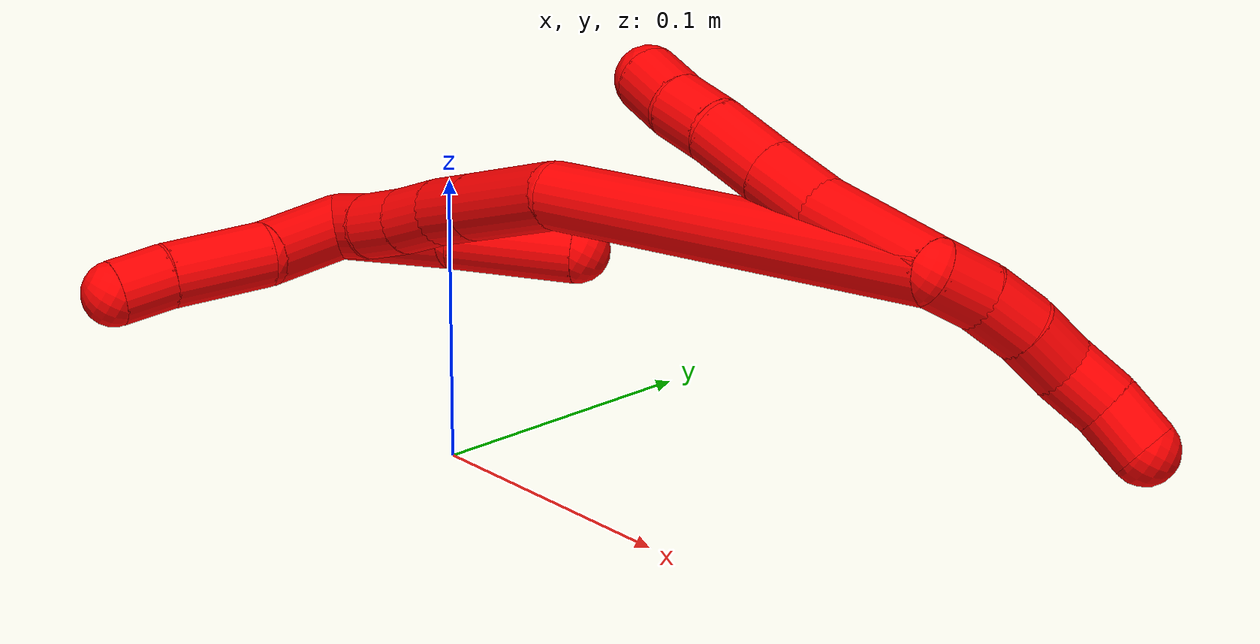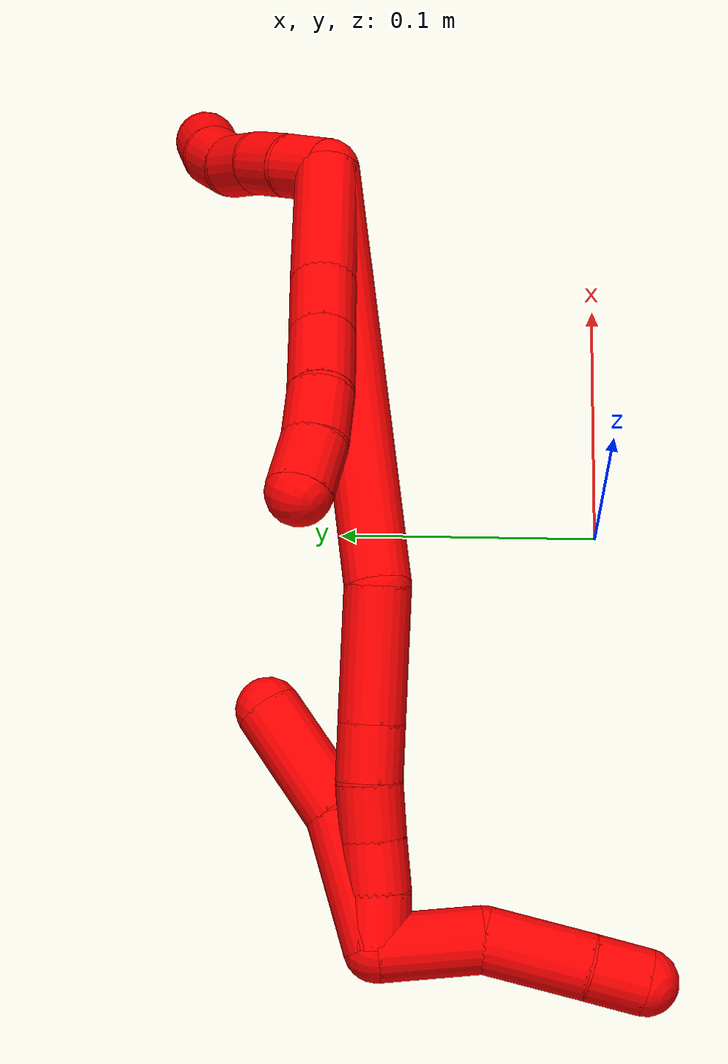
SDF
<sdf version="1.7">
 <world name="default">
  <model name="2">
   <static>0</static>
   <link name="2">
    <collision name="collision-cylinder-e_1_2_8">
     <pose>-0.016824 -0.011611 0.016488 0.613524 -0.695293 -0.228565</pose>
     <geometry><cylinder><radius>0.0125</radius><length>0.052525</length></cylinder></geometry>
     <surface>
      <friction><ode><mu>1.16</mu><mu2>1.16</mu2><slip1>0</slip1><slip2>0</slip2></ode></friction>
      <contact><ode><kp>1e+06</kp><kd>1</kd><max_vel>0</max_vel><min_depth>0.001</min_depth></ode></contact>
     </surface>
    </collision>
    <visual name="visual-cylinder-e_1_2_8">
     <pose>-0.016824 -0.011611 0.016488 0.613524 -0.695293 -0.228565</pose>
     <geometry><cylinder><radius>0.0125</radius><length>0.052525</length></cylinder></geometry>
     <material><ambient>1 0 0 1</ambient></material>
    </visual>
    <collision name="collision-cylinder-e_2_8_9">
     <pose>-0.042197 -0.027312 0.042206 0.41721 -0.702673 -0.154873</pose>
     <geometry><cylinder><radius>0.0125</radius><length>0.026457</length></cylinder></geometry>
     <surface>
      <friction><ode><mu>1.16</mu><mu2>1.16</mu2><slip1>0</slip1><slip2>0</slip2></ode></friction>
      <contact><ode><kp>1e+06</kp><kd>1</kd><max_vel>0</max_vel><min_depth>0.001</min_depth></ode></contact>
     </surface>
    </collision>
    <visual name="visual-cylinder-e_2_8_9">
     <pose>-0.042197 -0.027312 0.042206 0.41721 -0.702673 -0.154873</pose>
     <geometry><cylinder><radius>0.0125</radius><length>0.026457</length></cylinder></geometry>
     <material><ambient>1 0 0 1</ambient></material>
    </visual>
    <collision name="collision-cylinder-e_3_9_10">
     <pose>-0.059893 -0.035481 0.061266 0.393206 -0.709922 -0.147386</pose>
     <geometry><cylinder><radius>0.0125</radius><length>0.028067</length></cylinder></geometry>
     <surface>
      <friction><ode><mu>1.16</mu><mu2>1.16</mu2><slip1>0</slip1><slip2>0</slip2></ode></friction>
      <contact><ode><kp>1e+06</kp><kd>1</kd><max_vel>0</max_vel><min_depth>0.001</min_depth></ode></contact>
     </surface>
    </collision>
    <visual name="visual-cylinder-e_3_9_10">
     <pose>-0.059893 -0.035481 0.061266 0.393206 -0.709922 -0.147386</pose>
     <geometry><cylinder><radius>0.0125</radius><length>0.028067</length></cylinder></geometry>
     <material><ambient>1 0 0 1</ambient></material>
    </visual>
    <collision name="collision-cylinder-e_4_10_11">
     <pose>-0.076432 -0.043883 0.077353 0.604814 -0.771228 -0.251944</pose>
     <geometry><cylinder><radius>0.0125</radius><length>0.021211</length></cylinder></geometry>
     <surface>
      <friction><ode><mu>1.16</mu><mu2>1.16</mu2><slip1>0</slip1><slip2>0</slip2></ode></friction>
      <contact><ode><kp>1e+06</kp><kd>1</kd><max_vel>0</max_vel><min_depth>0.001</min_depth></ode></contact>
     </surface>
    </collision>
    <visual name="visual-cylinder-e_4_10_11">
     <pose>-0.076432 -0.043883 0.077353 0.604814 -0.771228 -0.251944</pose>
     <geometry><cylinder><radius>0.0125</radius><length>0.021211</length></cylinder></geometry>
     <material><ambient>1 0 0 1</ambient></material>
    </visual>
    <collision name="collision-cylinder-e_5_11_6">
     <pose>-0.092471 -0.052153 0.088883 0.642361 -0.91973 -0.326625</pose>
     <geometry><cylinder><radius>0.0125</radius><length>0.021739</length></cylinder></geometry>
     <surface>
      <friction><ode><mu>1.16</mu><mu2>1.16</mu2><slip1>0</slip1><slip2>0</slip2></ode></friction>
      <contact><ode><kp>1e+06</kp><kd>1</kd><max_vel>0</max_vel><min_depth>0.001</min_depth></ode></contact>
     </surface>
    </collision>
    <visual name="visual-cylinder-e_5_11_6">
     <pose>-0.092471 -0.052153 0.088883 0.642361 -0.91973 -0.326625</pose>
     <geometry><cylinder><radius>0.0125</radius><length>0.021739</length></cylinder></geometry>
     <material><ambient>1 0 0 1</ambient></material>
    </visual>
    <collision name="collision-cylinder-e_1_2_12">
     <pose>-0.001869 -0.000963 -0.009776 3.04336 -0.187986 -2.18029</pose>
     <geometry><cylinder><radius>0.0125</radius><length>0.02</length></cylinder></geometry>
     <surface>
      <friction><ode><mu>1.16</mu><mu2>1.16</mu2><slip1>0</slip1><slip2>0</slip2></ode></friction>
      <contact><ode><kp>1e+06</kp><kd>1</kd><max_vel>0</max_vel><min_depth>0.001</min_depth></ode></contact>
     </surface>
    </collision>
    <visual name="visual-cylinder-e_1_2_12">
     <pose>-0.001869 -0.000963 -0.009776 3.04336 -0.187986 -2.18029</pose>
     <geometry><cylinder><radius>0.0125</radius><length>0.02</length></cylinder></geometry>
     <material><ambient>1 0 0 1</ambient></material>
    </visual>
    <collision name="collision-cylinder-e_2_12_13">
     <pose>-0.004227 -0.003866 -0.029351 2.94618 -0.048956 -0.489536</pose>
     <geometry><cylinder><radius>0.0125</radius><length>0.02</length></cylinder></geometry>
     <surface>
      <friction><ode><mu>1.16</mu><mu2>1.16</mu2><slip1>0</slip1><slip2>0</slip2></ode></friction>
      <contact><ode><kp>1e+06</kp><kd>1</kd><max_vel>0</max_vel><min_depth>0.001</min_depth></ode></contact>
     </surface>
    </collision>
    <visual name="visual-cylinder-e_2_12_13">
     <pose>-0.004227 -0.003866 -0.029351 2.94618 -0.048956 -0.489536</pose>
     <geometry><cylinder><radius>0.0125</radius><length>0.02</length></cylinder></geometry>
     <material><ambient>1 0 0 1</ambient></material>
    </visual>
    <collision name="collision-cylinder-e_3_13_14">
     <pose>-0.004924 -0.009109 -0.048585 2.80492 -0.020751 -0.121959</pose>
     <geometry><cylinder><radius>0.0125</radius><length>0.02</length></cylinder></geometry>
     <surface>
      <friction><ode><mu>1.16</mu><mu2>1.16</mu2><slip1>0</slip1><slip2>0</slip2></ode></friction>
      <contact><ode><kp>1e+06</kp><kd>1</kd><max_vel>0</max_vel><min_depth>0.001</min_depth></ode></contact>
     </surface>
    </collision>
    <visual name="visual-cylinder-e_3_13_14">
     <pose>-0.004924 -0.009109 -0.048585 2.80492 -0.020751 -0.121959</pose>
     <geometry><cylinder><radius>0.0125</radius><length>0.02</length></cylinder></geometry>
     <material><ambient>1 0 0 1</ambient></material>
    </visual>
    <collision name="collision-cylinder-e_4_14_15">
     <pose>-0.003092 -0.013571 -0.067743 3.02289 0.205402 2.09557</pose>
     <geometry><cylinder><radius>0.0125</radius><length>0.02</length></cylinder></geometry>
     <surface>
      <friction><ode><mu>1.16</mu><mu2>1.16</mu2><slip1>0</slip1><slip2>0</slip2></ode></friction>
      <contact><ode><kp>1e+06</kp><kd>1</kd><max_vel>0</max_vel><min_depth>0.001</min_depth></ode></contact>
     </surface>
    </collision>
    <visual name="visual-cylinder-e_4_14_15">
     <pose>-0.003092 -0.013571 -0.067743 3.02289 0.205402 2.09557</pose>
     <geometry><cylinder><radius>0.0125</radius><length>0.02</length></cylinder></geometry>
     <material><ambient>1 0 0 1</ambient></material>
    </visual>
    <collision name="collision-cylinder-e_5_15_5">
     <pose>0.003521 -0.015949 -0.086273 3.00409 0.474925 2.58721</pose>
     <geometry><cylinder><radius>0.0125</radius><length>0.02</length></cylinder></geometry>
     <surface>
      <friction><ode><mu>1.16</mu><mu2>1.16</mu2><slip1>0</slip1><slip2>0</slip2></ode></friction>
      <contact><ode><kp>1e+06</kp><kd>1</kd><max_vel>0</max_vel><min_depth>0.001</min_depth></ode></contact>
     </surface>
    </collision>
    <visual name="visual-cylinder-e_5_15_5">
     <pose>0.003521 -0.015949 -0.086273 3.00409 0.474925 2.58721</pose>
     <geometry><cylinder><radius>0.0125</radius><length>0.02</length></cylinder></geometry>
     <material><ambient>1 0 0 1</ambient></material>
    </visual>
    <collision name="collision-cylinder-e_1_2_16">
     <pose>-0.040256 -0.052582 0.051061 0.800075 -0.502252 -0.216106</pose>
     <geometry><cylinder><radius>0.0125</radius><length>0.167244</length></cylinder></geometry>
     <surface>
      <friction><ode><mu>1.16</mu><mu2>1.16</mu2><slip1>0</slip1><slip2>0</slip2></ode></friction>
      <contact><ode><kp>1e+06</kp><kd>1</kd><max_vel>0</max_vel><min_depth>0.001</min_depth></ode></contact>
     </surface>
    </collision>
    <visual name="visual-cylinder-e_1_2_16">
     <pose>-0.040256 -0.052582 0.051061 0.800075 -0.502252 -0.216106</pose>
     <geometry><cylinder><radius>0.0125</radius><length>0.167244</length></cylinder></geometry>
     <material><ambient>1 0 0 1</ambient></material>
    </visual>
    <collision name="collision-cylinder-e_2_16_17">
     <pose>-0.092924 -0.125341 0.110535 1.17576 -0.516423 -0.348479</pose>
     <geometry><cylinder><radius>0.0125</radius><length>0.050275</length></cylinder></geometry>
     <surface>
      <friction><ode><mu>1.16</mu><mu2>1.16</mu2><slip1>0</slip1><slip2>0</slip2></ode></friction>
      <contact><ode><kp>1e+06</kp><kd>1</kd><max_vel>0</max_vel><min_depth>0.001</min_depth></ode></contact>
     </surface>
    </collision>
    <visual name="visual-cylinder-e_2_16_17">
     <pose>-0.092924 -0.125341 0.110535 1.17576 -0.516423 -0.348479</pose>
     <geometry><cylinder><radius>0.0125</radius><length>0.050275</length></cylinder></geometry>
     <material><ambient>1 0 0 1</ambient></material>
    </visual>
    <collision name="collision-cylinder-e_3_17_18">
     <pose>-0.110626 -0.154119 0.122564 1.17278 -0.515711 -0.346888</pose>
     <geometry><cylinder><radius>0.0125</radius><length>0.021453</length></cylinder></geometry>
     <surface>
      <friction><ode><mu>1.16</mu><mu2>1.16</mu2><slip1>0</slip1><slip2>0</slip2></ode></friction>
      <contact><ode><kp>1e+06</kp><kd>1</kd><max_vel>0</max_vel><min_depth>0.001</min_depth></ode></contact>
     </surface>
    </collision>
    <visual name="visual-cylinder-e_3_17_18">
     <pose>-0.110626 -0.154119 0.122564 1.17278 -0.515711 -0.346888</pose>
     <geometry><cylinder><radius>0.0125</radius><length>0.021453</length></cylinder></geometry>
     <material><ambient>1 0 0 1</ambient></material>
    </visual>
    <collision name="collision-cylinder-e_4_18_19">
     <pose>-0.119934 -0.171642 0.130001 1.16619 -0.392575 -0.26083</pose>
     <geometry><cylinder><radius>0.0125</radius><length>0.021007</length></cylinder></geometry>
     <surface>
      <friction><ode><mu>1.16</mu><mu2>1.16</mu2><slip1>0</slip1><slip2>0</slip2></ode></friction>
      <contact><ode><kp>1e+06</kp><kd>1</kd><max_vel>0</max_vel><min_depth>0.001</min_depth></ode></contact>
     </surface>
    </collision>
    <visual name="visual-cylinder-e_4_18_19">
     <pose>-0.119934 -0.171642 0.130001 1.16619 -0.392575 -0.26083</pose>
     <geometry><cylinder><radius>0.0125</radius><length>0.021007</length></cylinder></geometry>
     <material><ambient>1 0 0 1</ambient></material>
    </visual>
    <collision name="collision-cylinder-e_5_19_20">
     <pose>-0.127938 -0.188668 0.138117 1.08342 -0.409852 -0.248851</pose>
     <geometry><cylinder><radius>0.0125</radius><length>0.020002</length></cylinder></geometry>
     <surface>
      <friction><ode><mu>1.16</mu><mu2>1.16</mu2><slip1>0</slip1><slip2>0</slip2></ode></friction>
      <contact><ode><kp>1e+06</kp><kd>1</kd><max_vel>0</max_vel><min_depth>0.001</min_depth></ode></contact>
     </surface>
    </collision>
    <visual name="visual-cylinder-e_5_19_20">
     <pose>-0.127938 -0.188668 0.138117 1.08342 -0.409852 -0.248851</pose>
     <geometry><cylinder><radius>0.0125</radius><length>0.020002</length></cylinder></geometry>
     <material><ambient>1 0 0 1</ambient></material>
    </visual>
    <collision name="collision-cylinder-e_6_20_1">
     <pose>-0.137035 -0.204337 0.146514 1.07406 -0.536029 -0.324151</pose>
     <geometry><cylinder><radius>0.0125</radius><length>0.020018</length></cylinder></geometry>
     <surface>
      <friction><ode><mu>1.16</mu><mu2>1.16</mu2><slip1>0</slip1><slip2>0</slip2></ode></friction>
      <contact><ode><kp>1e+06</kp><kd>1</kd><max_vel>0</max_vel><min_depth>0.001</min_depth></ode></contact>
     </surface>
    </collision>
    <visual name="visual-cylinder-e_6_20_1">
     <pose>-0.137035 -0.204337 0.146514 1.07406 -0.536029 -0.324151</pose>
     <geometry><cylinder><radius>0.0125</radius><length>0.020018</length></cylinder></geometry>
     <material><ambient>1 0 0 1</ambient></material>
    </visual>
    <collision name="collision-cylinder-e_1_1_21">
     <pose>-0.133679 -0.194723 0.133266 -2.36108 0.333831 -0.777476</pose>
     <geometry><cylinder><radius>0.0125</radius><length>0.051684</length></cylinder></geometry>
     <surface>
      <friction><ode><mu>1.16</mu><mu2>1.16</mu2><slip1>0</slip1><slip2>0</slip2></ode></friction>
      <contact><ode><kp>1e+06</kp><kd>1</kd><max_vel>0</max_vel><min_depth>0.001</min_depth></ode></contact>
     </surface>
    </collision>
    <visual name="visual-cylinder-e_1_1_21">
     <pose>-0.133679 -0.194723 0.133266 -2.36108 0.333831 -0.777476</pose>
     <geometry><cylinder><radius>0.0125</radius><length>0.051684</length></cylinder></geometry>
     <material><ambient>1 0 0 1</ambient></material>
    </visual>
    <collision name="collision-cylinder-e_2_21_4">
     <pose>-0.123001 -0.165067 0.095349 -2.59636 0.091635 -0.325097</pose>
     <geometry><cylinder><radius>0.0125</radius><length>0.048316</length></cylinder></geometry>
     <surface>
      <friction><ode><mu>1.16</mu><mu2>1.16</mu2><slip1>0</slip1><slip2>0</slip2></ode></friction>
      <contact><ode><kp>1e+06</kp><kd>1</kd><max_vel>0</max_vel><min_depth>0.001</min_depth></ode></contact>
     </surface>
    </collision>
    <visual name="visual-cylinder-e_2_21_4">
     <pose>-0.123001 -0.165067 0.095349 -2.59636 0.091635 -0.325097</pose>
     <geometry><cylinder><radius>0.0125</radius><length>0.048316</length></cylinder></geometry>
     <material><ambient>1 0 0 1</ambient></material>
    </visual>
    <collision name="collision-cylinder-e_1_1_22">
     <pose>-0.12646 -0.213807 0.162098 0.164392 0.932384 0.082859</pose>
     <geometry><cylinder><radius>0.0125</radius><length>0.039068</length></cylinder></geometry>
     <surface>
      <friction><ode><mu>1.16</mu><mu2>1.16</mu2><slip1>0</slip1><slip2>0</slip2></ode></friction>
      <contact><ode><kp>1e+06</kp><kd>1</kd><max_vel>0</max_vel><min_depth>0.001</min_depth></ode></contact>
     </surface>
    </collision>
    <visual name="visual-cylinder-e_1_1_22">
     <pose>-0.12646 -0.213807 0.162098 0.164392 0.932384 0.082859</pose>
     <geometry><cylinder><radius>0.0125</radius><length>0.039068</length></cylinder></geometry>
     <material><ambient>1 0 0 1</ambient></material>
    </visual>
    <collision name="collision-cylinder-e_2_22_23">
     <pose>-0.099049 -0.221734 0.188467 0.384406 0.630706 0.126806</pose>
     <geometry><cylinder><radius>0.0125</radius><length>0.039762</length></cylinder></geometry>
     <surface>
      <friction><ode><mu>1.16</mu><mu2>1.16</mu2><slip1>0</slip1><slip2>0</slip2></ode></friction>
      <contact><ode><kp>1e+06</kp><kd>1</kd><max_vel>0</max_vel><min_depth>0.001</min_depth></ode></contact>
     </surface>
    </collision>
    <visual name="visual-cylinder-e_2_22_23">
     <pose>-0.099049 -0.221734 0.188467 0.384406 0.630706 0.126806</pose>
     <geometry><cylinder><radius>0.0125</radius><length>0.039762</length></cylinder></geometry>
     <material><ambient>1 0 0 1</ambient></material>
    </visual>
    <collision name="collision-cylinder-e_3_23_3">
     <pose>-0.08073 -0.231692 0.210635 0.495594 0.672547 0.176411</pose>
     <geometry><cylinder><radius>0.0125</radius><length>0.021169</length></cylinder></geometry>
     <surface>
      <friction><ode><mu>1.16</mu><mu2>1.16</mu2><slip1>0</slip1><slip2>0</slip2></ode></friction>
      <contact><ode><kp>1e+06</kp><kd>1</kd><max_vel>0</max_vel><min_depth>0.001</min_depth></ode></contact>
     </surface>
    </collision>
    <visual name="visual-cylinder-e_3_23_3">
     <pose>-0.08073 -0.231692 0.210635 0.495594 0.672547 0.176411</pose>
     <geometry><cylinder><radius>0.0125</radius><length>0.021169</length></cylinder></geometry>
     <material><ambient>1 0 0 1</ambient></material>
    </visual>
    <collision name="collision-sphere-3">
     <pose>-0.074136 -0.23563 0.217918 0 -0 0</pose>
     <geometry><sphere><radius>0.0125</radius></sphere></geometry>
     <surface>
      <friction><ode><mu>1.16</mu><mu2>1.16</mu2><slip1>0</slip1><slip2>0</slip2></ode></friction>
      <contact><ode><kp>1e+06</kp><kd>1</kd><max_vel>0</max_vel><min_depth>0.001</min_depth></ode></contact>
     </surface>
    </collision>
    <visual name="visual-sphere-3">
     <pose>-0.074136 -0.23563 0.217918 0 -0 0</pose>
     <geometry><sphere><radius>0.0125</radius></sphere></geometry>
     <material><ambient>1 0 0 1</ambient></material>
    </visual>
    <collision name="collision-sphere-23">
     <pose>-0.087324 -0.227755 0.203351 0 -0 0</pose>
     <geometry><sphere><radius>0.0125</radius></sphere></geometry>
     <surface>
      <friction><ode><mu>1.16</mu><mu2>1.16</mu2><slip1>0</slip1><slip2>0</slip2></ode></friction>
      <contact><ode><kp>1e+06</kp><kd>1</kd><max_vel>0</max_vel><min_depth>0.001</min_depth></ode></contact>
     </surface>
    </collision>
    <visual name="visual-sphere-23">
     <pose>-0.087324 -0.227755 0.203351 0 -0 0</pose>
     <geometry><sphere><radius>0.0125</radius></sphere></geometry>
     <material><ambient>1 0 0 1</ambient></material>
    </visual>
    <collision name="collision-sphere-22">
     <pose>-0.110773 -0.215712 0.173582 0 -0 0</pose>
     <geometry><sphere><radius>0.0125</radius></sphere></geometry>
     <surface>
      <friction><ode><mu>1.16</mu><mu2>1.16</mu2><slip1>0</slip1><slip2>0</slip2></ode></friction>
      <contact><ode><kp>1e+06</kp><kd>1</kd><max_vel>0</max_vel><min_depth>0.001</min_depth></ode></contact>
     </surface>
    </collision>
    <visual name="visual-sphere-22">
     <pose>-0.110773 -0.215712 0.173582 0 -0 0</pose>
     <geometry><sphere><radius>0.0125</radius></sphere></geometry>
     <material><ambient>1 0 0 1</ambient></material>
    </visual>
    <collision name="collision-sphere-4">
     <pose>-0.12079 -0.15259 0.07478 0 -0 0</pose>
     <geometry><sphere><radius>0.0125</radius></sphere></geometry>
     <surface>
      <friction><ode><mu>1.16</mu><mu2>1.16</mu2><slip1>0</slip1><slip2>0</slip2></ode></friction>
      <contact><ode><kp>1e+06</kp><kd>1</kd><max_vel>0</max_vel><min_depth>0.001</min_depth></ode></contact>
     </surface>
    </collision>
    <visual name="visual-sphere-4">
     <pose>-0.12079 -0.15259 0.07478 0 -0 0</pose>
     <geometry><sphere><radius>0.0125</radius></sphere></geometry>
     <material><ambient>1 0 0 1</ambient></material>
    </visual>
    <collision name="collision-sphere-21">
     <pose>-0.125211 -0.177543 0.115917 0 -0 0</pose>
     <geometry><sphere><radius>0.0125</radius></sphere></geometry>
     <surface>
      <friction><ode><mu>1.16</mu><mu2>1.16</mu2><slip1>0</slip1><slip2>0</slip2></ode></friction>
      <contact><ode><kp>1e+06</kp><kd>1</kd><max_vel>0</max_vel><min_depth>0.001</min_depth></ode></contact>
     </surface>
    </collision>
    <visual name="visual-sphere-21">
     <pose>-0.125211 -0.177543 0.115917 0 -0 0</pose>
     <geometry><sphere><radius>0.0125</radius></sphere></geometry>
     <material><ambient>1 0 0 1</ambient></material>
    </visual>
    <collision name="collision-sphere-1">
     <pose>-0.142146 -0.211902 0.150614 0 -0 0</pose>
     <geometry><sphere><radius>0.0125</radius></sphere></geometry>
     <surface>
      <friction><ode><mu>1.16</mu><mu2>1.16</mu2><slip1>0</slip1><slip2>0</slip2></ode></friction>
      <contact><ode><kp>1e+06</kp><kd>1</kd><max_vel>0</max_vel><min_depth>0.001</min_depth></ode></contact>
     </surface>
    </collision>
    <visual name="visual-sphere-1">
     <pose>-0.142146 -0.211902 0.150614 0 -0 0</pose>
     <geometry><sphere><radius>0.0125</radius></sphere></geometry>
     <material><ambient>1 0 0 1</ambient></material>
    </visual>
    <collision name="collision-sphere-6">
     <pose>-0.101117 -0.0561 0.094157 0 -0 0</pose>
     <geometry><sphere><radius>0.0125</radius></sphere></geometry>
     <surface>
      <friction><ode><mu>1.16</mu><mu2>1.16</mu2><slip1>0</slip1><slip2>0</slip2></ode></friction>
      <contact><ode><kp>1e+06</kp><kd>1</kd><max_vel>0</max_vel><min_depth>0.001</min_depth></ode></contact>
     </surface>
    </collision>
    <visual name="visual-sphere-6">
     <pose>-0.101117 -0.0561 0.094157 0 -0 0</pose>
     <geometry><sphere><radius>0.0125</radius></sphere></geometry>
     <material><ambient>1 0 0 1</ambient></material>
    </visual>
    <collision name="collision-sphere-11">
     <pose>-0.083824 -0.048207 0.083608 0 -0 0</pose>
     <geometry><sphere><radius>0.0125</radius></sphere></geometry>
     <surface>
      <friction><ode><mu>1.16</mu><mu2>1.16</mu2><slip1>0</slip1><slip2>0</slip2></ode></friction>
      <contact><ode><kp>1e+06</kp><kd>1</kd><max_vel>0</max_vel><min_depth>0.001</min_depth></ode></contact>
     </surface>
    </collision>
    <visual name="visual-sphere-11">
     <pose>-0.083824 -0.048207 0.083608 0 -0 0</pose>
     <geometry><sphere><radius>0.0125</radius></sphere></geometry>
     <material><ambient>1 0 0 1</ambient></material>
    </visual>
    <collision name="collision-sphere-10">
     <pose>-0.06904 -0.039559 0.071097 0 -0 0</pose>
     <geometry><sphere><radius>0.0125</radius></sphere></geometry>
     <surface>
      <friction><ode><mu>1.16</mu><mu2>1.16</mu2><slip1>0</slip1><slip2>0</slip2></ode></friction>
      <contact><ode><kp>1e+06</kp><kd>1</kd><max_vel>0</max_vel><min_depth>0.001</min_depth></ode></contact>
     </surface>
    </collision>
    <visual name="visual-sphere-10">
     <pose>-0.06904 -0.039559 0.071097 0 -0 0</pose>
     <geometry><sphere><radius>0.0125</radius></sphere></geometry>
     <material><ambient>1 0 0 1</ambient></material>
    </visual>
    <collision name="collision-sphere-9">
     <pose>-0.050746 -0.031403 0.051435 0 -0 0</pose>
     <geometry><sphere><radius>0.0125</radius></sphere></geometry>
     <surface>
      <friction><ode><mu>1.16</mu><mu2>1.16</mu2><slip1>0</slip1><slip2>0</slip2></ode></friction>
      <contact><ode><kp>1e+06</kp><kd>1</kd><max_vel>0</max_vel><min_depth>0.001</min_depth></ode></contact>
     </surface>
    </collision>
    <visual name="visual-sphere-9">
     <pose>-0.050746 -0.031403 0.051435 0 -0 0</pose>
     <geometry><sphere><radius>0.0125</radius></sphere></geometry>
     <material><ambient>1 0 0 1</ambient></material>
    </visual>
    <collision name="collision-sphere-2">
     <geometry><sphere><radius>0.0125</radius></sphere></geometry>
     <surface>
      <friction><ode><mu>1.16</mu><mu2>1.16</mu2><slip1>0</slip1><slip2>0</slip2></ode></friction>
      <contact><ode><kp>1e+06</kp><kd>1</kd><max_vel>0</max_vel><min_depth>0.001</min_depth></ode></contact>
     </surface>
    </collision>
    <visual name="visual-sphere-2">
     <geometry><sphere><radius>0.0125</radius></sphere></geometry>
     <material><ambient>1 0 0 1</ambient></material>
    </visual>
    <collision name="collision-sphere-19">
     <pose>-0.123953 -0.180563 0.133821 0 -0 0</pose>
     <geometry><sphere><radius>0.0125</radius></sphere></geometry>
     <surface>
      <friction><ode><mu>1.16</mu><mu2>1.16</mu2><slip1>0</slip1><slip2>0</slip2></ode></friction>
      <contact><ode><kp>1e+06</kp><kd>1</kd><max_vel>0</max_vel><min_depth>0.001</min_depth></ode></contact>
     </surface>
    </collision>
    <visual name="visual-sphere-19">
     <pose>-0.123953 -0.180563 0.133821 0 -0 0</pose>
     <geometry><sphere><radius>0.0125</radius></sphere></geometry>
     <material><ambient>1 0 0 1</ambient></material>
    </visual>
    <collision name="collision-sphere-8">
     <pose>-0.033648 -0.023222 0.032977 0 -0 0</pose>
     <geometry><sphere><radius>0.0125</radius></sphere></geometry>
     <surface>
      <friction><ode><mu>1.16</mu><mu2>1.16</mu2><slip1>0</slip1><slip2>0</slip2></ode></friction>
      <contact><ode><kp>1e+06</kp><kd>1</kd><max_vel>0</max_vel><min_depth>0.001</min_depth></ode></contact>
     </surface>
    </collision>
    <visual name="visual-sphere-8">
     <pose>-0.033648 -0.023222 0.032977 0 -0 0</pose>
     <geometry><sphere><radius>0.0125</radius></sphere></geometry>
     <material><ambient>1 0 0 1</ambient></material>
    </visual>
    <collision name="collision-sphere-12">
     <pose>-0.003738 -0.001927 -0.019553 0 -0 0</pose>
     <geometry><sphere><radius>0.0125</radius></sphere></geometry>
     <surface>
      <friction><ode><mu>1.16</mu><mu2>1.16</mu2><slip1>0</slip1><slip2>0</slip2></ode></friction>
      <contact><ode><kp>1e+06</kp><kd>1</kd><max_vel>0</max_vel><min_depth>0.001</min_depth></ode></contact>
     </surface>
    </collision>
    <visual name="visual-sphere-12">
     <pose>-0.003738 -0.001927 -0.019553 0 -0 0</pose>
     <geometry><sphere><radius>0.0125</radius></sphere></geometry>
     <material><ambient>1 0 0 1</ambient></material>
    </visual>
    <collision name="collision-sphere-13">
     <pose>-0.004716 -0.005806 -0.039149 0 -0 0</pose>
     <geometry><sphere><radius>0.0125</radius></sphere></geometry>
     <surface>
      <friction><ode><mu>1.16</mu><mu2>1.16</mu2><slip1>0</slip1><slip2>0</slip2></ode></friction>
      <contact><ode><kp>1e+06</kp><kd>1</kd><max_vel>0</max_vel><min_depth>0.001</min_depth></ode></contact>
     </surface>
    </collision>
    <visual name="visual-sphere-13">
     <pose>-0.004716 -0.005806 -0.039149 0 -0 0</pose>
     <geometry><sphere><radius>0.0125</radius></sphere></geometry>
     <material><ambient>1 0 0 1</ambient></material>
    </visual>
    <collision name="collision-sphere-14">
     <pose>-0.005131 -0.012411 -0.058022 0 -0 0</pose>
     <geometry><sphere><radius>0.0125</radius></sphere></geometry>
     <surface>
      <friction><ode><mu>1.16</mu><mu2>1.16</mu2><slip1>0</slip1><slip2>0</slip2></ode></friction>
      <contact><ode><kp>1e+06</kp><kd>1</kd><max_vel>0</max_vel><min_depth>0.001</min_depth></ode></contact>
     </surface>
    </collision>
    <visual name="visual-sphere-14">
     <pose>-0.005131 -0.012411 -0.058022 0 -0 0</pose>
     <geometry><sphere><radius>0.0125</radius></sphere></geometry>
     <material><ambient>1 0 0 1</ambient></material>
    </visual>
    <collision name="collision-sphere-15">
     <pose>-0.001052 -0.01473 -0.077464 0 -0 0</pose>
     <geometry><sphere><radius>0.0125</radius></sphere></geometry>
     <surface>
      <friction><ode><mu>1.16</mu><mu2>1.16</mu2><slip1>0</slip1><slip2>0</slip2></ode></friction>
      <contact><ode><kp>1e+06</kp><kd>1</kd><max_vel>0</max_vel><min_depth>0.001</min_depth></ode></contact>
     </surface>
    </collision>
    <visual name="visual-sphere-15">
     <pose>-0.001052 -0.01473 -0.077464 0 -0 0</pose>
     <geometry><sphere><radius>0.0125</radius></sphere></geometry>
     <material><ambient>1 0 0 1</ambient></material>
    </visual>
    <collision name="collision-sphere-5">
     <pose>0.008093 -0.017168 -0.095082 0 -0 0</pose>
     <geometry><sphere><radius>0.0125</radius></sphere></geometry>
     <surface>
      <friction><ode><mu>1.16</mu><mu2>1.16</mu2><slip1>0</slip1><slip2>0</slip2></ode></friction>
      <contact><ode><kp>1e+06</kp><kd>1</kd><max_vel>0</max_vel><min_depth>0.001</min_depth></ode></contact>
     </surface>
    </collision>
    <visual name="visual-sphere-5">
     <pose>0.008093 -0.017168 -0.095082 0 -0 0</pose>
     <geometry><sphere><radius>0.0125</radius></sphere></geometry>
     <material><ambient>1 0 0 1</ambient></material>
    </visual>
    <collision name="collision-sphere-16">
     <pose>-0.080511 -0.105165 0.102122 0 -0 0</pose>
     <geometry><sphere><radius>0.0125</radius></sphere></geometry>
     <surface>
      <friction><ode><mu>1.16</mu><mu2>1.16</mu2><slip1>0</slip1><slip2>0</slip2></ode></friction>
      <contact><ode><kp>1e+06</kp><kd>1</kd><max_vel>0</max_vel><min_depth>0.001</min_depth></ode></contact>
     </surface>
    </collision>
    <visual name="visual-sphere-16">
     <pose>-0.080511 -0.105165 0.102122 0 -0 0</pose>
     <geometry><sphere><radius>0.0125</radius></sphere></geometry>
     <material><ambient>1 0 0 1</ambient></material>
    </visual>
    <collision name="collision-sphere-17">
     <pose>-0.105336 -0.145517 0.118947 0 -0 0</pose>
     <geometry><sphere><radius>0.0125</radius></sphere></geometry>
     <surface>
      <friction><ode><mu>1.16</mu><mu2>1.16</mu2><slip1>0</slip1><slip2>0</slip2></ode></friction>
      <contact><ode><kp>1e+06</kp><kd>1</kd><max_vel>0</max_vel><min_depth>0.001</min_depth></ode></contact>
     </surface>
    </collision>
    <visual name="visual-sphere-17">
     <pose>-0.105336 -0.145517 0.118947 0 -0 0</pose>
     <geometry><sphere><radius>0.0125</radius></sphere></geometry>
     <material><ambient>1 0 0 1</ambient></material>
    </visual>
    <collision name="collision-sphere-18">
     <pose>-0.115916 -0.162721 0.126181 0 -0 0</pose>
     <geometry><sphere><radius>0.0125</radius></sphere></geometry>
     <surface>
      <friction><ode><mu>1.16</mu><mu2>1.16</mu2><slip1>0</slip1><slip2>0</slip2></ode></friction>
      <contact><ode><kp>1e+06</kp><kd>1</kd><max_vel>0</max_vel><min_depth>0.001</min_depth></ode></contact>
     </surface>
    </collision>
    <visual name="visual-sphere-18">
     <pose>-0.115916 -0.162721 0.126181 0 -0 0</pose>
     <geometry><sphere><radius>0.0125</radius></sphere></geometry>
     <material><ambient>1 0 0 1</ambient></material>
    </visual>
    <collision name="collision-sphere-20">
     <pose>-0.131923 -0.196772 0.142413 0 -0 0</pose>
     <geometry><sphere><radius>0.0125</radius></sphere></geometry>
     <surface>
      <friction><ode><mu>1.16</mu><mu2>1.16</mu2><slip1>0</slip1><slip2>0</slip2></ode></friction>
      <contact><ode><kp>1e+06</kp><kd>1</kd><max_vel>0</max_vel><min_depth>0.001</min_depth></ode></contact>
     </surface>
    </collision>
    <visual name="visual-sphere-20">
     <pose>-0.131923 -0.196772 0.142413 0 -0 0</pose>
     <geometry><sphere><radius>0.0125</radius></sphere></geometry>
     <material><ambient>1 0 0 1</ambient></material>
    </visual>
    <inertial>
     <pose>-0.070085 -0.10033 0.076498 0 -0 0</pose>
     <mass>0.75</mass>
     <inertia>
      <ixx>0.000296</ixx>
      <ixy>0</ixy>
      <ixz>0</ixz>
      <iyy>0.000216</iyy>
      <iyz>0</iyz>
      <izz>0.000473</izz>
     </inertia>
    </inertial>
   </link>
   <pose>0.121741 0.106675 0.075237 1.02466 0.284718 -0.881479</pose>
  </model>
 </world>
</sdf>
